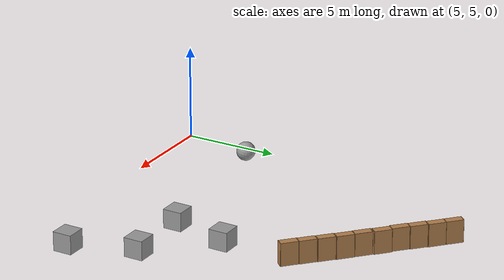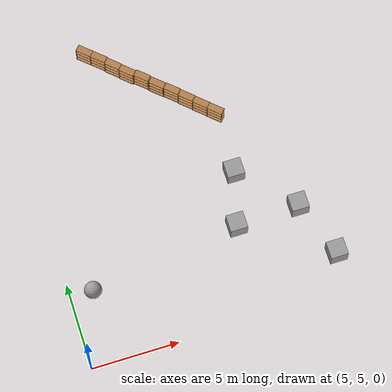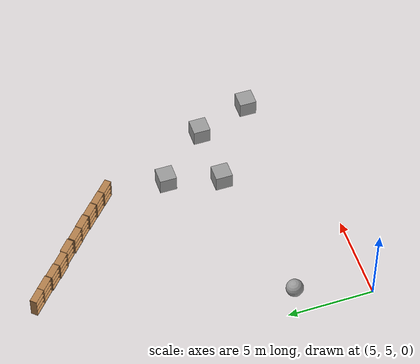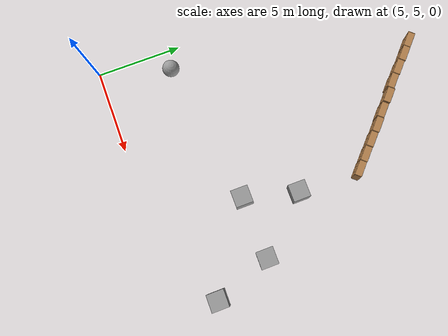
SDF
<sdf version="1.7">
 <world name="world_demo">
  <model name="ground_plane">
   <static>1</static>
   <link name="link">
    <collision name="collision">
     <geometry><plane><normal>0 0 1</normal><size>1 1</size></plane></geometry>
    </collision>
    <inertial>
     <mass>1</mass>
     <inertia><ixx>1</ixx><ixy>0</ixy><ixz>0</ixz><iyy>1</iyy><iyz>0</iyz><izz>1</izz></inertia>
    </inertial>
   </link>
  </model>
  <model name="bookshelf">
   <static>1</static>
   <link name="link">
    <inertial><mass>1</mass></inertial>
    <collision name="back">
     <pose>0 0.005 0.6 0 -0 0</pose>
     <geometry><box><size>0.9 0.01 1.2</size></box></geometry>
    </collision>
    <visual name="visual1">
     <pose>0 0.005 0.6 0 -0 0</pose>
     <geometry><box><size>0.9 0.01 1.2</size></box></geometry>
     <material>
      <script><uri>file://media/materials/scripts/gazebo.material</uri><name>Gazebo/Wood</name></script>
     </material>
    </visual>
    <collision name="left_side">
     <pose>0.45 -0.195 0.6 0 -0 0</pose>
     <geometry><box><size>0.02 0.4 1.2</size></box></geometry>
    </collision>
    <visual name="visual2">
     <pose>0.45 -0.195 0.6 0 -0 0</pose>
     <geometry><box><size>0.02 0.4 1.2</size></box></geometry>
     <material>
      <script><uri>file://media/materials/scripts/gazebo.material</uri><name>Gazebo/Wood</name></script>
     </material>
    </visual>
    <collision name="right_side">
     <pose>-0.45 -0.195 0.6 0 -0 0</pose>
     <geometry><box><size>0.02 0.4 1.2</size></box></geometry>
    </collision>
    <visual name="visual3">
     <pose>-0.45 -0.195 0.6 0 -0 0</pose>
     <geometry><box><size>0.02 0.4 1.2</size></box></geometry>
     <material>
      <script><uri>file://media/materials/scripts/gazebo.material</uri><name>Gazebo/Wood</name></script>
     </material>
    </visual>
    <collision name="bottom">
     <pose>0 -0.195 0.03 0 -0 0</pose>
     <geometry><box><size>0.88 0.4 0.06</size></box></geometry>
    </collision>
    <visual name="visual4">
     <pose>0 -0.195 0.03 0 -0 0</pose>
     <geometry><box><size>0.88 0.4 0.06</size></box></geometry>
     <material>
      <script><uri>file://media/materials/scripts/gazebo.material</uri><name>Gazebo/Wood</name></script>
     </material>
    </visual>
    <collision name="top">
     <pose>0 -0.195 1.19 0 -0 0</pose>
     <geometry><box><size>0.88 0.4 0.02</size></box></geometry>
    </collision>
    <visual name="visual5">
     <pose>0 -0.195 1.19 0 -0 0</pose>
     <geometry><box><size>0.88 0.4 0.02</size></box></geometry>
     <material>
      <script><uri>file://media/materials/scripts/gazebo.material</uri><name>Gazebo/Wood</name></script>
     </material>
    </visual>
    <collision name="low_shelf">
     <pose>0 -0.195 0.43 0 -0 0</pose>
     <geometry><box><size>0.88 0.4 0.02</size></box></geometry>
    </collision>
    <visual name="visual6">
     <pose>0 -0.195 0.43 0 -0 0</pose>
     <geometry><box><size>0.88 0.4 0.02</size></box></geometry>
     <material>
      <script><uri>file://media/materials/scripts/gazebo.material</uri><name>Gazebo/Wood</name></script>
     </material>
    </visual>
    <collision name="high_shelf">
     <pose>0 -0.195 0.8 0 -0 0</pose>
     <geometry><box><size>0.88 0.4 0.02</size></box></geometry>
    </collision>
    <visual name="visual7">
     <pose>0 -0.195 0.8 0 -0 0</pose>
     <geometry><box><size>0.88 0.4 0.02</size></box></geometry>
     <material>
      <script><uri>file://media/materials/scripts/gazebo.material</uri><name>Gazebo/Wood</name></script>
     </material>
    </visual>
   </link>
   <pose>9.98258 22.9867 0 0 0 -0.738287</pose>
  </model>
  <model name="bookshelf_clone">
   <static>1</static>
   <link name="link">
    <inertial><mass>1</mass></inertial>
    <collision name="back">
     <pose>0 0.005 0.6 0 -0 0</pose>
     <geometry><box><size>0.9 0.01 1.2</size></box></geometry>
    </collision>
    <visual name="visual1">
     <pose>0 0.005 0.6 0 -0 0</pose>
     <geometry><box><size>0.9 0.01 1.2</size></box></geometry>
     <material>
      <script><uri>file://media/materials/scripts/gazebo.material</uri><name>Gazebo/Wood</name></script>
     </material>
    </visual>
    <collision name="left_side">
     <pose>0.45 -0.195 0.6 0 -0 0</pose>
     <geometry><box><size>0.02 0.4 1.2</size></box></geometry>
    </collision>
    <visual name="visual2">
     <pose>0.45 -0.195 0.6 0 -0 0</pose>
     <geometry><box><size>0.02 0.4 1.2</size></box></geometry>
     <material>
      <script><uri>file://media/materials/scripts/gazebo.material</uri><name>Gazebo/Wood</name></script>
     </material>
    </visual>
    <collision name="right_side">
     <pose>-0.45 -0.195 0.6 0 -0 0</pose>
     <geometry><box><size>0.02 0.4 1.2</size></box></geometry>
    </collision>
    <visual name="visual3">
     <pose>-0.45 -0.195 0.6 0 -0 0</pose>
     <geometry><box><size>0.02 0.4 1.2</size></box></geometry>
     <material>
      <script><uri>file://media/materials/scripts/gazebo.material</uri><name>Gazebo/Wood</name></script>
     </material>
    </visual>
    <collision name="bottom">
     <pose>0 -0.195 0.03 0 -0 0</pose>
     <geometry><box><size>0.88 0.4 0.06</size></box></geometry>
    </collision>
    <visual name="visual4">
     <pose>0 -0.195 0.03 0 -0 0</pose>
     <geometry><box><size>0.88 0.4 0.06</size></box></geometry>
     <material>
      <script><uri>file://media/materials/scripts/gazebo.material</uri><name>Gazebo/Wood</name></script>
     </material>
    </visual>
    <collision name="top">
     <pose>0 -0.195 1.19 0 -0 0</pose>
     <geometry><box><size>0.88 0.4 0.02</size></box></geometry>
    </collision>
    <visual name="visual5">
     <pose>0 -0.195 1.19 0 -0 0</pose>
     <geometry><box><size>0.88 0.4 0.02</size></box></geometry>
     <material>
      <script><uri>file://media/materials/scripts/gazebo.material</uri><name>Gazebo/Wood</name></script>
     </material>
    </visual>
    <collision name="low_shelf">
     <pose>0 -0.195 0.43 0 -0 0</pose>
     <geometry><box><size>0.88 0.4 0.02</size></box></geometry>
    </collision>
    <visual name="visual6">
     <pose>0 -0.195 0.43 0 -0 0</pose>
     <geometry><box><size>0.88 0.4 0.02</size></box></geometry>
     <material>
      <script><uri>file://media/materials/scripts/gazebo.material</uri><name>Gazebo/Wood</name></script>
     </material>
    </visual>
    <collision name="high_shelf">
     <pose>0 -0.195 0.8 0 -0 0</pose>
     <geometry><box><size>0.88 0.4 0.02</size></box></geometry>
    </collision>
    <visual name="visual7">
     <pose>0 -0.195 0.8 0 -0 0</pose>
     <geometry><box><size>0.88 0.4 0.02</size></box></geometry>
     <material>
      <script><uri>file://media/materials/scripts/gazebo.material</uri><name>Gazebo/Wood</name></script>
     </material>
    </visual>
   </link>
   <pose>10.6539 22.378 0 0 0 -0.738287</pose>
  </model>
  <model name="bookshelf_clone_0">
   <static>1</static>
   <link name="link">
    <inertial><mass>1</mass></inertial>
    <collision name="back">
     <pose>0 0.005 0.6 0 -0 0</pose>
     <geometry><box><size>0.9 0.01 1.2</size></box></geometry>
    </collision>
    <visual name="visual1">
     <pose>0 0.005 0.6 0 -0 0</pose>
     <geometry><box><size>0.9 0.01 1.2</size></box></geometry>
     <material>
      <script><uri>file://media/materials/scripts/gazebo.material</uri><name>Gazebo/Wood</name></script>
     </material>
    </visual>
    <collision name="left_side">
     <pose>0.45 -0.195 0.6 0 -0 0</pose>
     <geometry><box><size>0.02 0.4 1.2</size></box></geometry>
    </collision>
    <visual name="visual2">
     <pose>0.45 -0.195 0.6 0 -0 0</pose>
     <geometry><box><size>0.02 0.4 1.2</size></box></geometry>
     <material>
      <script><uri>file://media/materials/scripts/gazebo.material</uri><name>Gazebo/Wood</name></script>
     </material>
    </visual>
    <collision name="right_side">
     <pose>-0.45 -0.195 0.6 0 -0 0</pose>
     <geometry><box><size>0.02 0.4 1.2</size></box></geometry>
    </collision>
    <visual name="visual3">
     <pose>-0.45 -0.195 0.6 0 -0 0</pose>
     <geometry><box><size>0.02 0.4 1.2</size></box></geometry>
     <material>
      <script><uri>file://media/materials/scripts/gazebo.material</uri><name>Gazebo/Wood</name></script>
     </material>
    </visual>
    <collision name="bottom">
     <pose>0 -0.195 0.03 0 -0 0</pose>
     <geometry><box><size>0.88 0.4 0.06</size></box></geometry>
    </collision>
    <visual name="visual4">
     <pose>0 -0.195 0.03 0 -0 0</pose>
     <geometry><box><size>0.88 0.4 0.06</size></box></geometry>
     <material>
      <script><uri>file://media/materials/scripts/gazebo.material</uri><name>Gazebo/Wood</name></script>
     </material>
    </visual>
    <collision name="top">
     <pose>0 -0.195 1.19 0 -0 0</pose>
     <geometry><box><size>0.88 0.4 0.02</size></box></geometry>
    </collision>
    <visual name="visual5">
     <pose>0 -0.195 1.19 0 -0 0</pose>
     <geometry><box><size>0.88 0.4 0.02</size></box></geometry>
     <material>
      <script><uri>file://media/materials/scripts/gazebo.material</uri><name>Gazebo/Wood</name></script>
     </material>
    </visual>
    <collision name="low_shelf">
     <pose>0 -0.195 0.43 0 -0 0</pose>
     <geometry><box><size>0.88 0.4 0.02</size></box></geometry>
    </collision>
    <visual name="visual6">
     <pose>0 -0.195 0.43 0 -0 0</pose>
     <geometry><box><size>0.88 0.4 0.02</size></box></geometry>
     <material>
      <script><uri>file://media/materials/scripts/gazebo.material</uri><name>Gazebo/Wood</name></script>
     </material>
    </visual>
    <collision name="high_shelf">
     <pose>0 -0.195 0.8 0 -0 0</pose>
     <geometry><box><size>0.88 0.4 0.02</size></box></geometry>
    </collision>
    <visual name="visual7">
     <pose>0 -0.195 0.8 0 -0 0</pose>
     <geometry><box><size>0.88 0.4 0.02</size></box></geometry>
     <material>
      <script><uri>file://media/materials/scripts/gazebo.material</uri><name>Gazebo/Wood</name></script>
     </material>
    </visual>
   </link>
   <pose>11.3115 21.7249 0 0 0 -0.738287</pose>
  </model>
  <model name="bookshelf_clone_1">
   <static>1</static>
   <link name="link">
    <inertial><mass>1</mass></inertial>
    <collision name="back">
     <pose>0 0.005 0.6 0 -0 0</pose>
     <geometry><box><size>0.9 0.01 1.2</size></box></geometry>
    </collision>
    <visual name="visual1">
     <pose>0 0.005 0.6 0 -0 0</pose>
     <geometry><box><size>0.9 0.01 1.2</size></box></geometry>
     <material>
      <script><uri>file://media/materials/scripts/gazebo.material</uri><name>Gazebo/Wood</name></script>
     </material>
    </visual>
    <collision name="left_side">
     <pose>0.45 -0.195 0.6 0 -0 0</pose>
     <geometry><box><size>0.02 0.4 1.2</size></box></geometry>
    </collision>
    <visual name="visual2">
     <pose>0.45 -0.195 0.6 0 -0 0</pose>
     <geometry><box><size>0.02 0.4 1.2</size></box></geometry>
     <material>
      <script><uri>file://media/materials/scripts/gazebo.material</uri><name>Gazebo/Wood</name></script>
     </material>
    </visual>
    <collision name="right_side">
     <pose>-0.45 -0.195 0.6 0 -0 0</pose>
     <geometry><box><size>0.02 0.4 1.2</size></box></geometry>
    </collision>
    <visual name="visual3">
     <pose>-0.45 -0.195 0.6 0 -0 0</pose>
     <geometry><box><size>0.02 0.4 1.2</size></box></geometry>
     <material>
      <script><uri>file://media/materials/scripts/gazebo.material</uri><name>Gazebo/Wood</name></script>
     </material>
    </visual>
    <collision name="bottom">
     <pose>0 -0.195 0.03 0 -0 0</pose>
     <geometry><box><size>0.88 0.4 0.06</size></box></geometry>
    </collision>
    <visual name="visual4">
     <pose>0 -0.195 0.03 0 -0 0</pose>
     <geometry><box><size>0.88 0.4 0.06</size></box></geometry>
     <material>
      <script><uri>file://media/materials/scripts/gazebo.material</uri><name>Gazebo/Wood</name></script>
     </material>
    </visual>
    <collision name="top">
     <pose>0 -0.195 1.19 0 -0 0</pose>
     <geometry><box><size>0.88 0.4 0.02</size></box></geometry>
    </collision>
    <visual name="visual5">
     <pose>0 -0.195 1.19 0 -0 0</pose>
     <geometry><box><size>0.88 0.4 0.02</size></box></geometry>
     <material>
      <script><uri>file://media/materials/scripts/gazebo.material</uri><name>Gazebo/Wood</name></script>
     </material>
    </visual>
    <collision name="low_shelf">
     <pose>0 -0.195 0.43 0 -0 0</pose>
     <geometry><box><size>0.88 0.4 0.02</size></box></geometry>
    </collision>
    <visual name="visual6">
     <pose>0 -0.195 0.43 0 -0 0</pose>
     <geometry><box><size>0.88 0.4 0.02</size></box></geometry>
     <material>
      <script><uri>file://media/materials/scripts/gazebo.material</uri><name>Gazebo/Wood</name></script>
     </material>
    </visual>
    <collision name="high_shelf">
     <pose>0 -0.195 0.8 0 -0 0</pose>
     <geometry><box><size>0.88 0.4 0.02</size></box></geometry>
    </collision>
    <visual name="visual7">
     <pose>0 -0.195 0.8 0 -0 0</pose>
     <geometry><box><size>0.88 0.4 0.02</size></box></geometry>
     <material>
      <script><uri>file://media/materials/scripts/gazebo.material</uri><name>Gazebo/Wood</name></script>
     </material>
    </visual>
   </link>
   <pose>11.9702 21.0835 0 0 0 -0.738287</pose>
  </model>
  <model name="bookshelf_clone_2">
   <static>1</static>
   <link name="link">
    <inertial><mass>1</mass></inertial>
    <collision name="back">
     <pose>0 0.005 0.6 0 -0 0</pose>
     <geometry><box><size>0.9 0.01 1.2</size></box></geometry>
    </collision>
    <visual name="visual1">
     <pose>0 0.005 0.6 0 -0 0</pose>
     <geometry><box><size>0.9 0.01 1.2</size></box></geometry>
     <material>
      <script><uri>file://media/materials/scripts/gazebo.material</uri><name>Gazebo/Wood</name></script>
     </material>
    </visual>
    <collision name="left_side">
     <pose>0.45 -0.195 0.6 0 -0 0</pose>
     <geometry><box><size>0.02 0.4 1.2</size></box></geometry>
    </collision>
    <visual name="visual2">
     <pose>0.45 -0.195 0.6 0 -0 0</pose>
     <geometry><box><size>0.02 0.4 1.2</size></box></geometry>
     <material>
      <script><uri>file://media/materials/scripts/gazebo.material</uri><name>Gazebo/Wood</name></script>
     </material>
    </visual>
    <collision name="right_side">
     <pose>-0.45 -0.195 0.6 0 -0 0</pose>
     <geometry><box><size>0.02 0.4 1.2</size></box></geometry>
    </collision>
    <visual name="visual3">
     <pose>-0.45 -0.195 0.6 0 -0 0</pose>
     <geometry><box><size>0.02 0.4 1.2</size></box></geometry>
     <material>
      <script><uri>file://media/materials/scripts/gazebo.material</uri><name>Gazebo/Wood</name></script>
     </material>
    </visual>
    <collision name="bottom">
     <pose>0 -0.195 0.03 0 -0 0</pose>
     <geometry><box><size>0.88 0.4 0.06</size></box></geometry>
    </collision>
    <visual name="visual4">
     <pose>0 -0.195 0.03 0 -0 0</pose>
     <geometry><box><size>0.88 0.4 0.06</size></box></geometry>
     <material>
      <script><uri>file://media/materials/scripts/gazebo.material</uri><name>Gazebo/Wood</name></script>
     </material>
    </visual>
    <collision name="top">
     <pose>0 -0.195 1.19 0 -0 0</pose>
     <geometry><box><size>0.88 0.4 0.02</size></box></geometry>
    </collision>
    <visual name="visual5">
     <pose>0 -0.195 1.19 0 -0 0</pose>
     <geometry><box><size>0.88 0.4 0.02</size></box></geometry>
     <material>
      <script><uri>file://media/materials/scripts/gazebo.material</uri><name>Gazebo/Wood</name></script>
     </material>
    </visual>
    <collision name="low_shelf">
     <pose>0 -0.195 0.43 0 -0 0</pose>
     <geometry><box><size>0.88 0.4 0.02</size></box></geometry>
    </collision>
    <visual name="visual6">
     <pose>0 -0.195 0.43 0 -0 0</pose>
     <geometry><box><size>0.88 0.4 0.02</size></box></geometry>
     <material>
      <script><uri>file://media/materials/scripts/gazebo.material</uri><name>Gazebo/Wood</name></script>
     </material>
    </visual>
    <collision name="high_shelf">
     <pose>0 -0.195 0.8 0 -0 0</pose>
     <geometry><box><size>0.88 0.4 0.02</size></box></geometry>
    </collision>
    <visual name="visual7">
     <pose>0 -0.195 0.8 0 -0 0</pose>
     <geometry><box><size>0.88 0.4 0.02</size></box></geometry>
     <material>
      <script><uri>file://media/materials/scripts/gazebo.material</uri><name>Gazebo/Wood</name></script>
     </material>
    </visual>
   </link>
   <pose>12.6884 20.5111 0 0 0 -0.738287</pose>
  </model>
  <model name="bookshelf_clone_3">
   <static>1</static>
   <link name="link">
    <inertial><mass>1</mass></inertial>
    <collision name="back">
     <pose>0 0.005 0.6 0 -0 0</pose>
     <geometry><box><size>0.9 0.01 1.2</size></box></geometry>
    </collision>
    <visual name="visual1">
     <pose>0 0.005 0.6 0 -0 0</pose>
     <geometry><box><size>0.9 0.01 1.2</size></box></geometry>
     <material>
      <script><uri>file://media/materials/scripts/gazebo.material</uri><name>Gazebo/Wood</name></script>
     </material>
    </visual>
    <collision name="left_side">
     <pose>0.45 -0.195 0.6 0 -0 0</pose>
     <geometry><box><size>0.02 0.4 1.2</size></box></geometry>
    </collision>
    <visual name="visual2">
     <pose>0.45 -0.195 0.6 0 -0 0</pose>
     <geometry><box><size>0.02 0.4 1.2</size></box></geometry>
     <material>
      <script><uri>file://media/materials/scripts/gazebo.material</uri><name>Gazebo/Wood</name></script>
     </material>
    </visual>
    <collision name="right_side">
     <pose>-0.45 -0.195 0.6 0 -0 0</pose>
     <geometry><box><size>0.02 0.4 1.2</size></box></geometry>
    </collision>
    <visual name="visual3">
     <pose>-0.45 -0.195 0.6 0 -0 0</pose>
     <geometry><box><size>0.02 0.4 1.2</size></box></geometry>
     <material>
      <script><uri>file://media/materials/scripts/gazebo.material</uri><name>Gazebo/Wood</name></script>
     </material>
    </visual>
    <collision name="bottom">
     <pose>0 -0.195 0.03 0 -0 0</pose>
     <geometry><box><size>0.88 0.4 0.06</size></box></geometry>
    </collision>
    <visual name="visual4">
     <pose>0 -0.195 0.03 0 -0 0</pose>
     <geometry><box><size>0.88 0.4 0.06</size></box></geometry>
     <material>
      <script><uri>file://media/materials/scripts/gazebo.material</uri><name>Gazebo/Wood</name></script>
     </material>
    </visual>
    <collision name="top">
     <pose>0 -0.195 1.19 0 -0 0</pose>
     <geometry><box><size>0.88 0.4 0.02</size></box></geometry>
    </collision>
    <visual name="visual5">
     <pose>0 -0.195 1.19 0 -0 0</pose>
     <geometry><box><size>0.88 0.4 0.02</size></box></geometry>
     <material>
      <script><uri>file://media/materials/scripts/gazebo.material</uri><name>Gazebo/Wood</name></script>
     </material>
    </visual>
    <collision name="low_shelf">
     <pose>0 -0.195 0.43 0 -0 0</pose>
     <geometry><box><size>0.88 0.4 0.02</size></box></geometry>
    </collision>
    <visual name="visual6">
     <pose>0 -0.195 0.43 0 -0 0</pose>
     <geometry><box><size>0.88 0.4 0.02</size></box></geometry>
     <material>
      <script><uri>file://media/materials/scripts/gazebo.material</uri><name>Gazebo/Wood</name></script>
     </material>
    </visual>
    <collision name="high_shelf">
     <pose>0 -0.195 0.8 0 -0 0</pose>
     <geometry><box><size>0.88 0.4 0.02</size></box></geometry>
    </collision>
    <visual name="visual7">
     <pose>0 -0.195 0.8 0 -0 0</pose>
     <geometry><box><size>0.88 0.4 0.02</size></box></geometry>
     <material>
      <script><uri>file://media/materials/scripts/gazebo.material</uri><name>Gazebo/Wood</name></script>
     </material>
    </visual>
   </link>
   <pose>13.3795 19.8332 0 0 0 -0.738287</pose>
  </model>
  <model name="bookshelf_clone_4">
   <static>1</static>
   <link name="link">
    <inertial><mass>1</mass></inertial>
    <collision name="back">
     <pose>0 0.005 0.6 0 -0 0</pose>
     <geometry><box><size>0.9 0.01 1.2</size></box></geometry>
    </collision>
    <visual name="visual1">
     <pose>0 0.005 0.6 0 -0 0</pose>
     <geometry><box><size>0.9 0.01 1.2</size></box></geometry>
     <material>
      <script><uri>file://media/materials/scripts/gazebo.material</uri><name>Gazebo/Wood</name></script>
     </material>
    </visual>
    <collision name="left_side">
     <pose>0.45 -0.195 0.6 0 -0 0</pose>
     <geometry><box><size>0.02 0.4 1.2</size></box></geometry>
    </collision>
    <visual name="visual2">
     <pose>0.45 -0.195 0.6 0 -0 0</pose>
     <geometry><box><size>0.02 0.4 1.2</size></box></geometry>
     <material>
      <script><uri>file://media/materials/scripts/gazebo.material</uri><name>Gazebo/Wood</name></script>
     </material>
    </visual>
    <collision name="right_side">
     <pose>-0.45 -0.195 0.6 0 -0 0</pose>
     <geometry><box><size>0.02 0.4 1.2</size></box></geometry>
    </collision>
    <visual name="visual3">
     <pose>-0.45 -0.195 0.6 0 -0 0</pose>
     <geometry><box><size>0.02 0.4 1.2</size></box></geometry>
     <material>
      <script><uri>file://media/materials/scripts/gazebo.material</uri><name>Gazebo/Wood</name></script>
     </material>
    </visual>
    <collision name="bottom">
     <pose>0 -0.195 0.03 0 -0 0</pose>
     <geometry><box><size>0.88 0.4 0.06</size></box></geometry>
    </collision>
    <visual name="visual4">
     <pose>0 -0.195 0.03 0 -0 0</pose>
     <geometry><box><size>0.88 0.4 0.06</size></box></geometry>
     <material>
      <script><uri>file://media/materials/scripts/gazebo.material</uri><name>Gazebo/Wood</name></script>
     </material>
    </visual>
    <collision name="top">
     <pose>0 -0.195 1.19 0 -0 0</pose>
     <geometry><box><size>0.88 0.4 0.02</size></box></geometry>
    </collision>
    <visual name="visual5">
     <pose>0 -0.195 1.19 0 -0 0</pose>
     <geometry><box><size>0.88 0.4 0.02</size></box></geometry>
     <material>
      <script><uri>file://media/materials/scripts/gazebo.material</uri><name>Gazebo/Wood</name></script>
     </material>
    </visual>
    <collision name="low_shelf">
     <pose>0 -0.195 0.43 0 -0 0</pose>
     <geometry><box><size>0.88 0.4 0.02</size></box></geometry>
    </collision>
    <visual name="visual6">
     <pose>0 -0.195 0.43 0 -0 0</pose>
     <geometry><box><size>0.88 0.4 0.02</size></box></geometry>
     <material>
      <script><uri>file://media/materials/scripts/gazebo.material</uri><name>Gazebo/Wood</name></script>
     </material>
    </visual>
    <collision name="high_shelf">
     <pose>0 -0.195 0.8 0 -0 0</pose>
     <geometry><box><size>0.88 0.4 0.02</size></box></geometry>
    </collision>
    <visual name="visual7">
     <pose>0 -0.195 0.8 0 -0 0</pose>
     <geometry><box><size>0.88 0.4 0.02</size></box></geometry>
     <material>
      <script><uri>file://media/materials/scripts/gazebo.material</uri><name>Gazebo/Wood</name></script>
     </material>
    </visual>
   </link>
   <pose>14.0716 19.227 0 0 0 -0.738287</pose>
  </model>
  <model name="bookshelf_clone_5">
   <static>1</static>
   <link name="link">
    <inertial><mass>1</mass></inertial>
    <collision name="back">
     <pose>0 0.005 0.6 0 -0 0</pose>
     <geometry><box><size>0.9 0.01 1.2</size></box></geometry>
    </collision>
    <visual name="visual1">
     <pose>0 0.005 0.6 0 -0 0</pose>
     <geometry><box><size>0.9 0.01 1.2</size></box></geometry>
     <material>
      <script><uri>file://media/materials/scripts/gazebo.material</uri><name>Gazebo/Wood</name></script>
     </material>
    </visual>
    <collision name="left_side">
     <pose>0.45 -0.195 0.6 0 -0 0</pose>
     <geometry><box><size>0.02 0.4 1.2</size></box></geometry>
    </collision>
    <visual name="visual2">
     <pose>0.45 -0.195 0.6 0 -0 0</pose>
     <geometry><box><size>0.02 0.4 1.2</size></box></geometry>
     <material>
      <script><uri>file://media/materials/scripts/gazebo.material</uri><name>Gazebo/Wood</name></script>
     </material>
    </visual>
    <collision name="right_side">
     <pose>-0.45 -0.195 0.6 0 -0 0</pose>
     <geometry><box><size>0.02 0.4 1.2</size></box></geometry>
    </collision>
    <visual name="visual3">
     <pose>-0.45 -0.195 0.6 0 -0 0</pose>
     <geometry><box><size>0.02 0.4 1.2</size></box></geometry>
     <material>
      <script><uri>file://media/materials/scripts/gazebo.material</uri><name>Gazebo/Wood</name></script>
     </material>
    </visual>
    <collision name="bottom">
     <pose>0 -0.195 0.03 0 -0 0</pose>
     <geometry><box><size>0.88 0.4 0.06</size></box></geometry>
    </collision>
    <visual name="visual4">
     <pose>0 -0.195 0.03 0 -0 0</pose>
     <geometry><box><size>0.88 0.4 0.06</size></box></geometry>
     <material>
      <script><uri>file://media/materials/scripts/gazebo.material</uri><name>Gazebo/Wood</name></script>
     </material>
    </visual>
    <collision name="top">
     <pose>0 -0.195 1.19 0 -0 0</pose>
     <geometry><box><size>0.88 0.4 0.02</size></box></geometry>
    </collision>
    <visual name="visual5">
     <pose>0 -0.195 1.19 0 -0 0</pose>
     <geometry><box><size>0.88 0.4 0.02</size></box></geometry>
     <material>
      <script><uri>file://media/materials/scripts/gazebo.material</uri><name>Gazebo/Wood</name></script>
     </material>
    </visual>
    <collision name="low_shelf">
     <pose>0 -0.195 0.43 0 -0 0</pose>
     <geometry><box><size>0.88 0.4 0.02</size></box></geometry>
    </collision>
    <visual name="visual6">
     <pose>0 -0.195 0.43 0 -0 0</pose>
     <geometry><box><size>0.88 0.4 0.02</size></box></geometry>
     <material>
      <script><uri>file://media/materials/scripts/gazebo.material</uri><name>Gazebo/Wood</name></script>
     </material>
    </visual>
    <collision name="high_shelf">
     <pose>0 -0.195 0.8 0 -0 0</pose>
     <geometry><box><size>0.88 0.4 0.02</size></box></geometry>
    </collision>
    <visual name="visual7">
     <pose>0 -0.195 0.8 0 -0 0</pose>
     <geometry><box><size>0.88 0.4 0.02</size></box></geometry>
     <material>
      <script><uri>file://media/materials/scripts/gazebo.material</uri><name>Gazebo/Wood</name></script>
     </material>
    </visual>
   </link>
   <pose>14.737 18.5789 0 0 0 -0.738287</pose>
  </model>
  <model name="bookshelf_clone_6">
   <static>1</static>
   <link name="link">
    <inertial><mass>1</mass></inertial>
    <collision name="back">
     <pose>0 0.005 0.6 0 -0 0</pose>
     <geometry><box><size>0.9 0.01 1.2</size></box></geometry>
    </collision>
    <visual name="visual1">
     <pose>0 0.005 0.6 0 -0 0</pose>
     <geometry><box><size>0.9 0.01 1.2</size></box></geometry>
     <material>
      <script><uri>file://media/materials/scripts/gazebo.material</uri><name>Gazebo/Wood</name></script>
     </material>
    </visual>
    <collision name="left_side">
     <pose>0.45 -0.195 0.6 0 -0 0</pose>
     <geometry><box><size>0.02 0.4 1.2</size></box></geometry>
    </collision>
    <visual name="visual2">
     <pose>0.45 -0.195 0.6 0 -0 0</pose>
     <geometry><box><size>0.02 0.4 1.2</size></box></geometry>
     <material>
      <script><uri>file://media/materials/scripts/gazebo.material</uri><name>Gazebo/Wood</name></script>
     </material>
    </visual>
    <collision name="right_side">
     <pose>-0.45 -0.195 0.6 0 -0 0</pose>
     <geometry><box><size>0.02 0.4 1.2</size></box></geometry>
    </collision>
    <visual name="visual3">
     <pose>-0.45 -0.195 0.6 0 -0 0</pose>
     <geometry><box><size>0.02 0.4 1.2</size></box></geometry>
     <material>
      <script><uri>file://media/materials/scripts/gazebo.material</uri><name>Gazebo/Wood</name></script>
     </material>
    </visual>
    <collision name="bottom">
     <pose>0 -0.195 0.03 0 -0 0</pose>
     <geometry><box><size>0.88 0.4 0.06</size></box></geometry>
    </collision>
    <visual name="visual4">
     <pose>0 -0.195 0.03 0 -0 0</pose>
     <geometry><box><size>0.88 0.4 0.06</size></box></geometry>
     <material>
      <script><uri>file://media/materials/scripts/gazebo.material</uri><name>Gazebo/Wood</name></script>
     </material>
    </visual>
    <collision name="top">
     <pose>0 -0.195 1.19 0 -0 0</pose>
     <geometry><box><size>0.88 0.4 0.02</size></box></geometry>
    </collision>
    <visual name="visual5">
     <pose>0 -0.195 1.19 0 -0 0</pose>
     <geometry><box><size>0.88 0.4 0.02</size></box></geometry>
     <material>
      <script><uri>file://media/materials/scripts/gazebo.material</uri><name>Gazebo/Wood</name></script>
     </material>
    </visual>
    <collision name="low_shelf">
     <pose>0 -0.195 0.43 0 -0 0</pose>
     <geometry><box><size>0.88 0.4 0.02</size></box></geometry>
    </collision>
    <visual name="visual6">
     <pose>0 -0.195 0.43 0 -0 0</pose>
     <geometry><box><size>0.88 0.4 0.02</size></box></geometry>
     <material>
      <script><uri>file://media/materials/scripts/gazebo.material</uri><name>Gazebo/Wood</name></script>
     </material>
    </visual>
    <collision name="high_shelf">
     <pose>0 -0.195 0.8 0 -0 0</pose>
     <geometry><box><size>0.88 0.4 0.02</size></box></geometry>
    </collision>
    <visual name="visual7">
     <pose>0 -0.195 0.8 0 -0 0</pose>
     <geometry><box><size>0.88 0.4 0.02</size></box></geometry>
     <material>
      <script><uri>file://media/materials/scripts/gazebo.material</uri><name>Gazebo/Wood</name></script>
     </material>
    </visual>
   </link>
   <pose>15.407 17.9376 0 0 0 -0.738287</pose>
  </model>
  <model name="bookshelf_clone_7">
   <static>1</static>
   <link name="link">
    <inertial><mass>1</mass></inertial>
    <collision name="back">
     <pose>0 0.005 0.6 0 -0 0</pose>
     <geometry><box><size>0.9 0.01 1.2</size></box></geometry>
    </collision>
    <visual name="visual1">
     <pose>0 0.005 0.6 0 -0 0</pose>
     <geometry><box><size>0.9 0.01 1.2</size></box></geometry>
     <material>
      <script><uri>file://media/materials/scripts/gazebo.material</uri><name>Gazebo/Wood</name></script>
     </material>
    </visual>
    <collision name="left_side">
     <pose>0.45 -0.195 0.6 0 -0 0</pose>
     <geometry><box><size>0.02 0.4 1.2</size></box></geometry>
    </collision>
    <visual name="visual2">
     <pose>0.45 -0.195 0.6 0 -0 0</pose>
     <geometry><box><size>0.02 0.4 1.2</size></box></geometry>
     <material>
      <script><uri>file://media/materials/scripts/gazebo.material</uri><name>Gazebo/Wood</name></script>
     </material>
    </visual>
    <collision name="right_side">
     <pose>-0.45 -0.195 0.6 0 -0 0</pose>
     <geometry><box><size>0.02 0.4 1.2</size></box></geometry>
    </collision>
    <visual name="visual3">
     <pose>-0.45 -0.195 0.6 0 -0 0</pose>
     <geometry><box><size>0.02 0.4 1.2</size></box></geometry>
     <material>
      <script><uri>file://media/materials/scripts/gazebo.material</uri><name>Gazebo/Wood</name></script>
     </material>
    </visual>
    <collision name="bottom">
     <pose>0 -0.195 0.03 0 -0 0</pose>
     <geometry><box><size>0.88 0.4 0.06</size></box></geometry>
    </collision>
    <visual name="visual4">
     <pose>0 -0.195 0.03 0 -0 0</pose>
     <geometry><box><size>0.88 0.4 0.06</size></box></geometry>
     <material>
      <script><uri>file://media/materials/scripts/gazebo.material</uri><name>Gazebo/Wood</name></script>
     </material>
    </visual>
    <collision name="top">
     <pose>0 -0.195 1.19 0 -0 0</pose>
     <geometry><box><size>0.88 0.4 0.02</size></box></geometry>
    </collision>
    <visual name="visual5">
     <pose>0 -0.195 1.19 0 -0 0</pose>
     <geometry><box><size>0.88 0.4 0.02</size></box></geometry>
     <material>
      <script><uri>file://media/materials/scripts/gazebo.material</uri><name>Gazebo/Wood</name></script>
     </material>
    </visual>
    <collision name="low_shelf">
     <pose>0 -0.195 0.43 0 -0 0</pose>
     <geometry><box><size>0.88 0.4 0.02</size></box></geometry>
    </collision>
    <visual name="visual6">
     <pose>0 -0.195 0.43 0 -0 0</pose>
     <geometry><box><size>0.88 0.4 0.02</size></box></geometry>
     <material>
      <script><uri>file://media/materials/scripts/gazebo.material</uri><name>Gazebo/Wood</name></script>
     </material>
    </visual>
    <collision name="high_shelf">
     <pose>0 -0.195 0.8 0 -0 0</pose>
     <geometry><box><size>0.88 0.4 0.02</size></box></geometry>
    </collision>
    <visual name="visual7">
     <pose>0 -0.195 0.8 0 -0 0</pose>
     <geometry><box><size>0.88 0.4 0.02</size></box></geometry>
     <material>
      <script><uri>file://media/materials/scripts/gazebo.material</uri><name>Gazebo/Wood</name></script>
     </material>
    </visual>
   </link>
   <pose>16.0696 17.3076 0 0 0 -0.738287</pose>
  </model>
  <model name="unit_box">
   <pose>15.8663 13.5219 0.49907 -0.0001 -0 -2e-06</pose>
   <link name="link">
    <inertial>
     <mass>1</mass>
     <inertia>
      <ixx>0.166667</ixx>
      <ixy>0</ixy>
      <ixz>0</ixz>
      <iyy>0.166667</iyy>
      <iyz>0</iyz>
      <izz>0.166667</izz>
     </inertia>
    </inertial>
    <collision name="collision"><geometry><box><size>1 1 1</size></box></geometry></collision>
    <visual name="visual">
     <geometry><box><size>1 1 1</size></box></geometry>
     <material>
      <script><name>Gazebo/Grey</name><uri>file://media/materials/scripts/gazebo.material</uri></script>
     </material>
    </visual>
   </link>
  </model>
  <model name="unit_box_0">
   <pose>15.0322 10.4193 0.49907 0.0001 -0 -4e-06</pose>
   <link name="link">
    <inertial>
     <mass>1</mass>
     <inertia>
      <ixx>0.166667</ixx>
      <ixy>0</ixy>
      <ixz>0</ixz>
      <iyy>0.166667</iyy>
      <iyz>0</iyz>
      <izz>0.166667</izz>
     </inertia>
    </inertial>
    <collision name="collision"><geometry><box><size>1 1 1</size></box></geometry></collision>
    <visual name="visual">
     <geometry><box><size>1 1 1</size></box></geometry>
     <material>
      <script><name>Gazebo/Grey</name><uri>file://media/materials/scripts/gazebo.material</uri></script>
     </material>
    </visual>
   </link>
  </model>
  <model name="unit_box_1">
   <pose>18.6831 10.5352 0.49907 -0.0001 -0 -1e-06</pose>
   <link name="link">
    <inertial>
     <mass>1</mass>
     <inertia>
      <ixx>0.166667</ixx>
      <ixy>0</ixy>
      <ixz>0</ixz>
      <iyy>0.166667</iyy>
      <iyz>0</iyz>
      <izz>0.166667</izz>
     </inertia>
    </inertial>
    <collision name="collision"><geometry><box><size>1 1 1</size></box></geometry></collision>
    <visual name="visual">
     <geometry><box><size>1 1 1</size></box></geometry>
     <material>
      <script><name>Gazebo/Grey</name><uri>file://media/materials/scripts/gazebo.material</uri></script>
     </material>
    </visual>
   </link>
  </model>
  <model name="unit_box_2">
   <pose>19.8493 7.26329 0.49967 0.00066 -0 -1e-06</pose>
   <link name="link">
    <inertial>
     <mass>1</mass>
     <inertia>
      <ixx>0.166667</ixx>
      <ixy>0</ixy>
      <ixz>0</ixz>
      <iyy>0.166667</iyy>
      <iyz>0</iyz>
      <izz>0.166667</izz>
     </inertia>
    </inertial>
    <collision name="collision"><geometry><box><size>1 1 1</size></box></geometry></collision>
    <visual name="visual">
     <geometry><box><size>1 1 1</size></box></geometry>
     <material>
      <script><name>Gazebo/Grey</name><uri>file://media/materials/scripts/gazebo.material</uri></script>
     </material>
    </visual>
   </link>
  </model>
  <model name="unit_sphere">
   <pose>6.30982 9.15159 0.5 -0.200261 0 0</pose>
   <link name="link">
    <inertial>
     <mass>1</mass>
     <inertia><ixx>0.1</ixx><ixy>0</ixy><ixz>0</ixz><iyy>0.1</iyy><iyz>0</iyz><izz>0.1</izz></inertia>
    </inertial>
    <collision name="collision"><geometry><sphere><radius>0.5</radius></sphere></geometry></collision>
    <visual name="visual">
     <geometry><sphere><radius>0.5</radius></sphere></geometry>
     <material>
      <script><name>Gazebo/Grey</name><uri>file://media/materials/scripts/gazebo.material</uri></script>
     </material>
    </visual>
   </link>
  </model>
 </world>
</sdf>
